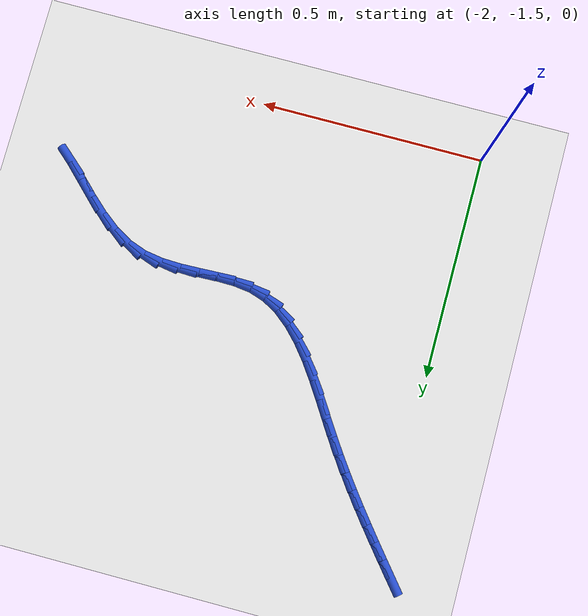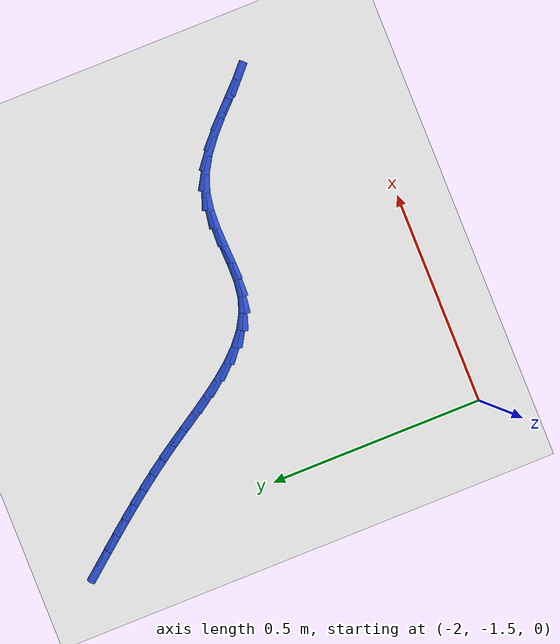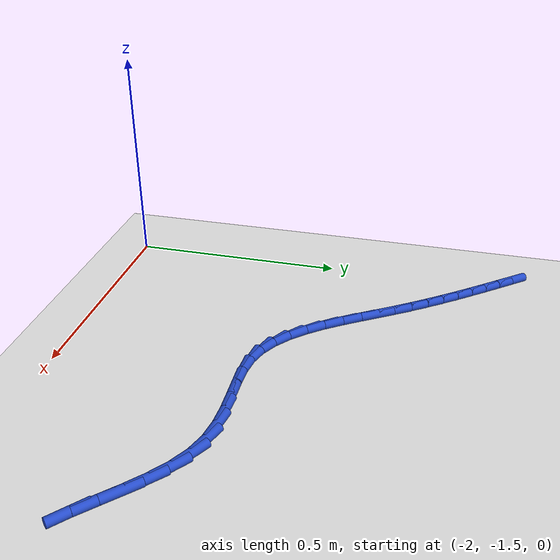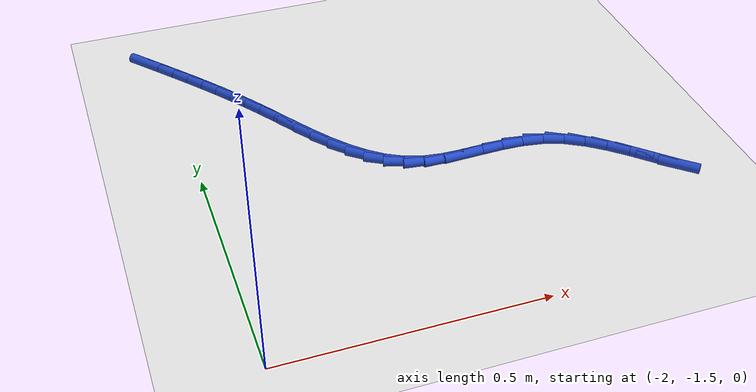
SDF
<sdf version="1.6">
 <world name="default">
  <model name="ground_plane">
   <static>1</static>
   <link name="link">
    <collision name="collision">
     <geometry><plane><normal>0 0 1</normal><size>100 100</size></plane></geometry>
     <surface><friction><ode><mu>100</mu><mu2>50</mu2></ode></friction></surface>
    </collision>
    <visual name="visual">
     <cast_shadows>0</cast_shadows>
     <geometry><plane><normal>0 0 1</normal><size>100 100</size></plane></geometry>
     <material>
      <script><uri>file://media/materials/scripts/gazebo.material</uri><name>Gazebo/WhiteGlow</name></script>
     </material>
    </visual>
   </link>
  </model>
  <model name="line">
   <link name="link_105">
    <pose>-2.0287736983083082 -0.5657977793549738 0.01 0 1.57 -0.8860870112374084</pose>
    <collision name="collision">
     <geometry><cylinder><radius>0.01</radius><length>0.08</length></cylinder></geometry>
    </collision>
    <visual name="visual">
     <material>
      <script><name>Gazebo/Blue</name><uri>file://media/materials/scripts/gazebo.material</uri></script>
     </material>
     <geometry><cylinder><radius>0.01</radius><length>0.08</length></cylinder></geometry>
    </visual>
   </link>
   <link name="link_106">
    <pose>-2.0029460879852126 -0.5974306510688949 0.01 0 1.57 -0.8906643496873407</pose>
    <collision name="collision">
     <geometry><cylinder><radius>0.01</radius><length>0.08</length></cylinder></geometry>
    </collision>
    <visual name="visual">
     <material>
      <script><name>Gazebo/Blue</name><uri>file://media/materials/scripts/gazebo.material</uri></script>
     </material>
     <geometry><cylinder><radius>0.01</radius><length>0.08</length></cylinder></geometry>
    </visual>
   </link>
   <link name="link_107">
    <pose>-1.9777745264199877 -0.6285496941044982 0.01 0 1.57 -0.8985513540667255</pose>
    <collision name="collision">
     <geometry><cylinder><radius>0.01</radius><length>0.08</length></cylinder></geometry>
    </collision>
    <visual name="visual">
     <material>
      <script><name>Gazebo/Blue</name><uri>file://media/materials/scripts/gazebo.material</uri></script>
     </material>
     <geometry><cylinder><radius>0.01</radius><length>0.08</length></cylinder></geometry>
    </visual>
   </link>
   <link name="link_108">
    <pose>-1.9531600400522888 -0.6594757274439771 0.01 0 1.57 -0.9096850223940357</pose>
    <collision name="collision">
     <geometry><cylinder><radius>0.01</radius><length>0.08</length></cylinder></geometry>
    </collision>
    <visual name="visual">
     <material>
      <script><name>Gazebo/Blue</name><uri>file://media/materials/scripts/gazebo.material</uri></script>
     </material>
     <geometry><cylinder><radius>0.01</radius><length>0.08</length></cylinder></geometry>
    </visual>
   </link>
   <link name="link_109">
    <pose>-1.9290036553217675 -0.6905295700695238 0.01 0 1.57 -0.9238423025257698</pose>
    <collision name="collision">
     <geometry><cylinder><radius>0.01</radius><length>0.08</length></cylinder></geometry>
    </collision>
    <visual name="visual">
     <material>
      <script><name>Gazebo/Blue</name><uri>file://media/materials/scripts/gazebo.material</uri></script>
     </material>
     <geometry><cylinder><radius>0.01</radius><length>0.08</length></cylinder></geometry>
    </visual>
   </link>
   <link name="link_110">
    <pose>-1.90520639866808 -0.7220320409633303 0.01 0 1.57 -0.9406512566346489</pose>
    <collision name="collision">
     <geometry><cylinder><radius>0.01</radius><length>0.08</length></cylinder></geometry>
    </collision>
    <visual name="visual">
     <material>
      <script><name>Gazebo/Blue</name><uri>file://media/materials/scripts/gazebo.material</uri></script>
     </material>
     <geometry><cylinder><radius>0.01</radius><length>0.08</length></cylinder></geometry>
    </visual>
   </link>
   <link name="link_111">
    <pose>-1.8816692965308788 -0.7543039591075896 0.01 0 1.57 -0.9596200463178239</pose>
    <collision name="collision">
     <geometry><cylinder><radius>0.01</radius><length>0.08</length></cylinder></geometry>
    </collision>
    <visual name="visual">
     <material>
      <script><name>Gazebo/Blue</name><uri>file://media/materials/scripts/gazebo.material</uri></script>
     </material>
     <geometry><cylinder><radius>0.01</radius><length>0.08</length></cylinder></geometry>
    </visual>
   </link>
   <link name="link_112">
    <pose>-1.8582933753498172 -0.7876661434844943 0.01 0 1.57 -0.9801795563173274</pose>
    <collision name="collision">
     <geometry><cylinder><radius>0.01</radius><length>0.08</length></cylinder></geometry>
    </collision>
    <visual name="visual">
     <material>
      <script><name>Gazebo/Blue</name><uri>file://media/materials/scripts/gazebo.material</uri></script>
     </material>
     <geometry><cylinder><radius>0.01</radius><length>0.08</length></cylinder></geometry>
    </visual>
   </link>
   <link name="link_113">
    <pose>-1.8349796615645497 -0.8224394130762369 0.01 0 1.57 -1.0005796190780625</pose>
    <collision name="collision">
     <geometry><cylinder><radius>0.01</radius><length>0.08</length></cylinder></geometry>
    </collision>
    <visual name="visual">
     <material>
      <script><name>Gazebo/Blue</name><uri>file://media/materials/scripts/gazebo.material</uri></script>
     </material>
     <geometry><cylinder><radius>0.01</radius><length>0.08</length></cylinder></geometry>
    </visual>
   </link>
   <link name="link_114">
    <pose>-1.81161655506195 -0.858871724888304 0.01 0 1.57 -1.0074506505190437</pose>
    <collision name="collision">
     <geometry><cylinder><radius>0.01</radius><length>0.08</length></cylinder></geometry>
    </collision>
    <visual name="visual">
     <material>
      <script><name>Gazebo/Blue</name><uri>file://media/materials/scripts/gazebo.material</uri></script>
     </material>
     <geometry><cylinder><radius>0.01</radius><length>0.08</length></cylinder></geometry>
    </visual>
   </link>
   <link name="link_115">
    <pose>-1.7879435188512194 -0.8963515903196585 0.01 0 1.57 -0.9933011861653044</pose>
    <collision name="collision">
     <geometry><cylinder><radius>0.01</radius><length>0.08</length></cylinder></geometry>
    </collision>
    <visual name="visual">
     <material>
      <script><name>Gazebo/Blue</name><uri>file://media/materials/scripts/gazebo.material</uri></script>
     </material>
     <geometry><cylinder><radius>0.01</radius><length>0.08</length></cylinder></geometry>
    </visual>
   </link>
   <link name="link_116">
    <pose>-1.7636028952286384 -0.9337070822040963 0.01 0 1.57 -0.9576017412209656</pose>
    <collision name="collision">
     <geometry><cylinder><radius>0.01</radius><length>0.08</length></cylinder></geometry>
    </collision>
    <visual name="visual">
     <material>
      <script><name>Gazebo/Blue</name><uri>file://media/materials/scripts/gazebo.material</uri></script>
     </material>
     <geometry><cylinder><radius>0.01</radius><length>0.08</length></cylinder></geometry>
    </visual>
   </link>
   <link name="link_117">
    <pose>-1.7382353607900283 -0.969756661391041 0.01 0 1.57 -0.8978007291827309</pose>
    <collision name="collision">
     <geometry><cylinder><radius>0.01</radius><length>0.08</length></cylinder></geometry>
    </collision>
    <visual name="visual">
     <material>
      <script><name>Gazebo/Blue</name><uri>file://media/materials/scripts/gazebo.material</uri></script>
     </material>
     <geometry><cylinder><radius>0.01</radius><length>0.08</length></cylinder></geometry>
    </visual>
   </link>
   <link name="link_118">
    <pose>-1.711481592131208 -1.0033187887299155 0.01 0 1.57 -0.8092633228967541</pose>
    <collision name="collision">
     <geometry><cylinder><radius>0.01</radius><length>0.08</length></cylinder></geometry>
    </collision>
    <visual name="visual">
     <material>
      <script><name>Gazebo/Blue</name><uri>file://media/materials/scripts/gazebo.material</uri></script>
     </material>
     <geometry><cylinder><radius>0.01</radius><length>0.08</length></cylinder></geometry>
    </visual>
   </link>
   <link name="link_119">
    <pose>-1.6829822658479994 -1.0332119250701433 0.01 0 1.57 -0.6857843163605973</pose>
    <collision name="collision">
     <geometry><cylinder><radius>0.01</radius><length>0.08</length></cylinder></geometry>
    </collision>
    <visual name="visual">
     <material>
      <script><name>Gazebo/Blue</name><uri>file://media/materials/scripts/gazebo.material</uri></script>
     </material>
     <geometry><cylinder><radius>0.01</radius><length>0.08</length></cylinder></geometry>
    </visual>
   </link>
   <link name="link_120">
    <pose>-1.6523780585362227 -1.0582545312611475 0.01 0 1.57 -0.5217479182776203</pose>
    <collision name="collision">
     <geometry><cylinder><radius>0.01</radius><length>0.08</length></cylinder></geometry>
    </collision>
    <visual name="visual">
     <material>
      <script><name>Gazebo/Blue</name><uri>file://media/materials/scripts/gazebo.material</uri></script>
     </material>
     <geometry><cylinder><radius>0.01</radius><length>0.08</length></cylinder></geometry>
    </visual>
   </link>
   <link name="link_121">
    <pose>-1.619309646791701 -1.0772650681523515 0.01 0 1.57 -0.31862766478055626</pose>
    <collision name="collision">
     <geometry><cylinder><radius>0.01</radius><length>0.08</length></cylinder></geometry>
    </collision>
    <visual name="visual">
     <material>
      <script><name>Gazebo/Blue</name><uri>file://media/materials/scripts/gazebo.material</uri></script>
     </material>
     <geometry><cylinder><radius>0.01</radius><length>0.08</length></cylinder></geometry>
    </visual>
   </link>
   <link name="link_122">
    <pose>-1.5834292522827706 -1.0891008281489225 0.01 0 1.57 -0.12931836677335584</pose>
    <collision name="collision">
     <geometry><cylinder><radius>0.01</radius><length>0.08</length></cylinder></geometry>
    </collision>
    <visual name="visual">
     <material>
      <script><name>Gazebo/Blue</name><uri>file://media/materials/scripts/gazebo.material</uri></script>
     </material>
     <geometry><cylinder><radius>0.01</radius><length>0.08</length></cylinder></geometry>
    </visual>
   </link>
   <link name="link_123">
    <pose>-1.5448352561112766 -1.0941197494845025 0.01 0 1.57 -0.012410078922640424</pose>
    <collision name="collision">
     <geometry><cylinder><radius>0.01</radius><length>0.08</length></cylinder></geometry>
    </collision>
    <visual name="visual">
     <material>
      <script><name>Gazebo/Blue</name><uri>file://media/materials/scripts/gazebo.material</uri></script>
     </material>
     <geometry><cylinder><radius>0.01</radius><length>0.08</length></cylinder></geometry>
    </visual>
   </link>
   <link name="link_124">
    <pose>-1.504204084815477 -1.094624011414405 0.01 0 1.57 0.037614399453913254</pose>
    <collision name="collision">
     <geometry><cylinder><radius>0.01</radius><length>0.08</length></cylinder></geometry>
    </collision>
    <visual name="visual">
     <material>
      <script><name>Gazebo/Blue</name><uri>file://media/materials/scripts/gazebo.material</uri></script>
     </material>
     <geometry><cylinder><radius>0.01</radius><length>0.08</length></cylinder></geometry>
    </visual>
   </link>
   <link name="link_125">
    <pose>-1.462250643017027 -1.093045213242019 0.01 0 1.57 0.028897865469953696</pose>
    <collision name="collision">
     <geometry><cylinder><radius>0.01</radius><length>0.08</length></cylinder></geometry>
    </collision>
    <visual name="visual">
     <material>
      <script><name>Gazebo/Blue</name><uri>file://media/materials/scripts/gazebo.material</uri></script>
     </material>
     <geometry><cylinder><radius>0.01</radius><length>0.08</length></cylinder></geometry>
    </visual>
   </link>
   <link name="link_126">
    <pose>-1.4196898353375793 -1.0918149542707332 0.01 0 1.57 -0.03649168953439314</pose>
    <collision name="collision">
     <geometry><cylinder><radius>0.01</radius><length>0.08</length></cylinder></geometry>
    </collision>
    <visual name="visual">
     <material>
      <script><name>Gazebo/Blue</name><uri>file://media/materials/scripts/gazebo.material</uri></script>
     </material>
     <geometry><cylinder><radius>0.01</radius><length>0.08</length></cylinder></geometry>
    </visual>
   </link>
   <link name="link_127">
    <pose>-1.3772365663987902 -1.0933648338039363 0.01 0 1.57 -0.16101252593326026</pose>
    <collision name="collision">
     <geometry><cylinder><radius>0.01</radius><length>0.08</length></cylinder></geometry>
    </collision>
    <visual name="visual">
     <material>
      <script><name>Gazebo/Blue</name><uri>file://media/materials/scripts/gazebo.material</uri></script>
     </material>
     <geometry><cylinder><radius>0.01</radius><length>0.08</length></cylinder></geometry>
    </visual>
   </link>
   <link name="link_128">
    <pose>-1.3356057408223116 -1.100126451145017 0.01 0 1.57 -0.3442833557413394</pose>
    <collision name="collision">
     <geometry><cylinder><radius>0.01</radius><length>0.08</length></cylinder></geometry>
    </collision>
    <visual name="visual">
     <material>
      <script><name>Gazebo/Blue</name><uri>file://media/materials/scripts/gazebo.material</uri></script>
     </material>
     <geometry><cylinder><radius>0.01</radius><length>0.08</length></cylinder></geometry>
    </visual>
   </link>
   <link name="link_129">
    <pose>-1.2955079276606887 -1.1145040654572707 0.01 0 1.57 -0.5346849851108917</pose>
    <collision name="collision">
     <geometry><cylinder><radius>0.01</radius><length>0.08</length></cylinder></geometry>
    </collision>
    <visual name="visual">
     <material>
      <script><name>Gazebo/Blue</name><uri>file://media/materials/scripts/gazebo.material</uri></script>
     </material>
     <geometry><cylinder><radius>0.01</radius><length>0.08</length></cylinder></geometry>
    </visual>
   </link>
   <link name="link_130">
    <pose>-1.2573667320382529 -1.1370923386397325 0.01 0 1.57 -0.6664260254208906</pose>
    <collision name="collision">
     <geometry><cylinder><radius>0.01</radius><length>0.08</length></cylinder></geometry>
    </collision>
    <visual name="visual">
     <material>
      <script><name>Gazebo/Blue</name><uri>file://media/materials/scripts/gazebo.material</uri></script>
     </material>
     <geometry><cylinder><radius>0.01</radius><length>0.08</length></cylinder></geometry>
    </visual>
   </link>
   <link name="link_131">
    <pose>-1.2211448109512841 -1.165579189306048 0.01 0 1.57 -0.7465827562947344</pose>
    <collision name="collision">
     <geometry><cylinder><radius>0.01</radius><length>0.08</length></cylinder></geometry>
    </collision>
    <visual name="visual">
     <material>
      <script><name>Gazebo/Blue</name><uri>file://media/materials/scripts/gazebo.material</uri></script>
     </material>
     <geometry><cylinder><radius>0.01</radius><length>0.08</length></cylinder></geometry>
    </visual>
   </link>
   <link name="link_132">
    <pose>-1.1867632198942513 -1.197390196603224 0.01 0 1.57 -0.7844858962034048</pose>
    <collision name="collision">
     <geometry><cylinder><radius>0.01</radius><length>0.08</length></cylinder></geometry>
    </collision>
    <visual name="visual">
     <material>
      <script><name>Gazebo/Blue</name><uri>file://media/materials/scripts/gazebo.material</uri></script>
     </material>
     <geometry><cylinder><radius>0.01</radius><length>0.08</length></cylinder></geometry>
    </visual>
   </link>
   <link name="link_133">
    <pose>-1.1541430143616205 -1.229950939678268 0.01 0 1.57 -0.7821276381332868</pose>
    <collision name="collision">
     <geometry><cylinder><radius>0.01</radius><length>0.08</length></cylinder></geometry>
    </collision>
    <visual name="visual">
     <material>
      <script><name>Gazebo/Blue</name><uri>file://media/materials/scripts/gazebo.material</uri></script>
     </material>
     <geometry><cylinder><radius>0.01</radius><length>0.08</length></cylinder></geometry>
    </visual>
   </link>
   <link name="link_134">
    <pose>-1.1232052498478589 -1.2606869976781871 0.01 0 1.57 -0.7316104999910564</pose>
    <collision name="collision">
     <geometry><cylinder><radius>0.01</radius><length>0.08</length></cylinder></geometry>
    </collision>
    <visual name="visual">
     <material>
      <script><name>Gazebo/Blue</name><uri>file://media/materials/scripts/gazebo.material</uri></script>
     </material>
     <geometry><cylinder><radius>0.01</radius><length>0.08</length></cylinder></geometry>
    </visual>
   </link>
  </model>
 </world>
</sdf>
